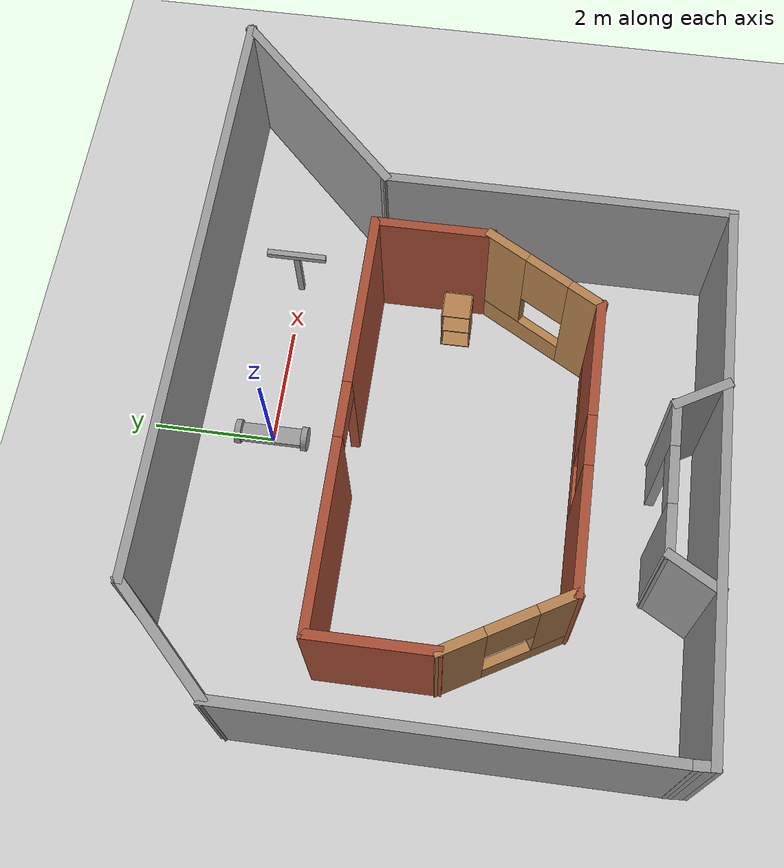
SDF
<sdf version="1.6">
 <world name="default">
  <plugin name="hello" filename="libhello.so"/>
  <plugin name="hello" filename="libhello.so"/>
  <plugin name="collision_map_creator" filename="libcollision_map_creator.so"/>
  <light name="sun" type="directional">
   <pose>0 0 10 0 -0 0</pose>
   <diffuse>0.8 0.8 0.8 1</diffuse>
   <specular>0.2 0.2 0.2 1</specular>
   <attenuation>
    <range>1000</range>
    <constant>0.9</constant>
    <linear>0.01</linear>
    <quadratic>0.001</quadratic>
   </attenuation>
   <direction>-0.5 0.1 -0.9</direction>
  </light>
  <model name="ground_plane">
   <static>1</static>
   <link name="link">
    <collision name="collision">
     <geometry><plane><normal>0 0 1</normal><size>100 100</size></plane></geometry>
     <surface>
      <contact><collide_bitmask>65535</collide_bitmask></contact>
      <friction><ode><mu>100</mu><mu2>50</mu2></ode></friction>
     </surface>
    </collision>
    <visual name="visual">
     <cast_shadows>0</cast_shadows>
     <geometry><plane><normal>0 0 1</normal><size>100 100</size></plane></geometry>
     <material>
      <script><uri>file://media/materials/scripts/gazebo.material</uri><name>Gazebo/Grey</name></script>
     </material>
    </visual>
   </link>
  </model>
  <gravity>0 0 -9.8</gravity>
  <magnetic_field>6e-06 2.3e-05 -4.2e-05</magnetic_field>
  <atmosphere type="adiabatic"/>
  <physics name="default_physics" default="0" type="ode">
   <max_step_size>0.001</max_step_size>
   <real_time_factor>1</real_time_factor>
   <real_time_update_rate>1000</real_time_update_rate>
  </physics>
  <scene><ambient>0.4 0.4 0.4 1</ambient><background>0.7 0.7 0.7 1</background><shadows>1</shadows></scene>
  <spherical_coordinates>
   <surface_model>EARTH_WGS84</surface_model>
   <latitude_deg>0</latitude_deg>
   <longitude_deg>0</longitude_deg>
   <elevation>0</elevation>
   <heading_deg>0</heading_deg>
  </spherical_coordinates>
  <model name="house">
   <pose>-0.44 -3.22805 0 0 -0 0</pose>
   <link name="Wall_0">
    <collision name="Wall_0_Collision">
     <geometry><box><size>2 0.15 2.5</size></box></geometry>
     <pose>0 0 1.25 0 -0 0</pose>
    </collision>
    <visual name="Wall_0_Visual">
     <pose>0 0 1.25 0 -0 0</pose>
     <geometry><box><size>2 0.15 2.5</size></box></geometry>
     <material>
      <script><uri>file://media/materials/scripts/gazebo.material</uri><name>Gazebo/Bricks</name></script>
      <ambient>0.435294 0.796078 0.67451 1</ambient>
     </material>
     <meta><layer>0</layer></meta>
    </visual>
    <pose>-3.35 0.923052 0 0 -0 1.5708</pose>
   </link>
   <link name="Wall_10">
    <pose>0 -1.8206 0 0 -0 0</pose>
    <visual name="Wall_10_Visual_0">
     <pose>-1.37779 0 1.25 0 -0 0</pose>
     <geometry><box><size>1.99442 0.15 2.5</size></box></geometry>
     <material>
      <script><uri>file://media/materials/scripts/gazebo.material</uri><name>Gazebo/Bricks</name></script>
      <ambient>0.435294 0.796078 0.67451 1</ambient>
     </material>
     <meta><layer>0</layer></meta>
    </visual>
    <collision name="Wall_10_Collision_0">
     <geometry><box><size>1.99442 0.15 2.5</size></box></geometry>
     <pose>-1.37779 0 1.25 0 -0 0</pose>
    </collision>
    <visual name="Wall_10_Visual_1">
     <pose>0.99721 0 0.25 0 -0 0</pose>
     <geometry><box><size>2.75558 0.15 0.5</size></box></geometry>
     <material>
      <script><uri>file://media/materials/scripts/gazebo.material</uri><name>Gazebo/Bricks</name></script>
      <ambient>0.435294 0.796078 0.67451 1</ambient>
     </material>
     <meta><layer>0</layer></meta>
    </visual>
    <collision name="Wall_10_Collision_1">
     <geometry><box><size>2.75558 0.15 0.5</size></box></geometry>
     <pose>0.99721 0 0.25 0 -0 0</pose>
    </collision>
    <visual name="Wall_10_Visual_2">
     <pose>1.39721 0 1.5 0 -0 0</pose>
     <geometry><box><size>1.95558 0.15 2</size></box></geometry>
     <material>
      <script><uri>file://media/materials/scripts/gazebo.material</uri><name>Gazebo/Bricks</name></script>
      <ambient>0.435294 0.796078 0.67451 1</ambient>
     </material>
     <meta><layer>0</layer></meta>
    </visual>
    <collision name="Wall_10_Collision_2">
     <geometry><box><size>1.95558 0.15 2</size></box></geometry>
     <pose>1.39721 0 1.5 0 -0 0</pose>
    </collision>
    <visual name="Wall_10_Visual_3">
     <pose>0.019419 0 1.9 0 -0 0</pose>
     <geometry><box><size>0.8 0.15 1.2</size></box></geometry>
     <material>
      <script><uri>file://media/materials/scripts/gazebo.material</uri><name>Gazebo/Bricks</name></script>
      <ambient>0.435294 0.796078 0.67451 1</ambient>
     </material>
     <meta><layer>0</layer></meta>
    </visual>
    <collision name="Wall_10_Collision_3">
     <geometry><box><size>0.8 0.15 1.2</size></box></geometry>
     <pose>0.019419 0 1.9 0 -0 0</pose>
    </collision>
   </link>
   <link name="Wall_11">
    <pose>2.825 -0.911274 0 0 -0 1.0472</pose>
    <visual name="Wall_11_Visual_0">
     <pose>-0.798385 0 1.25 0 -0 0</pose>
     <geometry><box><size>0.65323 0.15 2.5</size></box></geometry>
     <material>
      <script><uri>file://media/materials/scripts/gazebo.material</uri><name>Gazebo/Wood</name></script>
      <ambient>1 1 1 1</ambient>
     </material>
     <meta><layer>0</layer></meta>
    </visual>
    <collision name="Wall_11_Collision_0">
     <geometry><box><size>0.65323 0.15 2.5</size></box></geometry>
     <pose>-0.798385 0 1.25 0 -0 0</pose>
    </collision>
    <visual name="Wall_11_Visual_1">
     <pose>0.326615 0 0.25 0 -0 0</pose>
     <geometry><box><size>1.59677 0.15 0.5</size></box></geometry>
     <material>
      <script><uri>file://media/materials/scripts/gazebo.material</uri><name>Gazebo/Wood</name></script>
      <ambient>1 1 1 1</ambient>
     </material>
     <meta><layer>0</layer></meta>
    </visual>
    <collision name="Wall_11_Collision_1">
     <geometry><box><size>1.59677 0.15 0.5</size></box></geometry>
     <pose>0.326615 0 0.25 0 -0 0</pose>
    </collision>
    <visual name="Wall_11_Visual_2">
     <pose>0.726615 0 1.5 0 -0 0</pose>
     <geometry><box><size>0.79677 0.15 2</size></box></geometry>
     <material>
      <script><uri>file://media/materials/scripts/gazebo.material</uri><name>Gazebo/Wood</name></script>
      <ambient>1 1 1 1</ambient>
     </material>
     <meta><layer>0</layer></meta>
    </visual>
    <collision name="Wall_11_Collision_2">
     <geometry><box><size>0.79677 0.15 2</size></box></geometry>
     <pose>0.726615 0 1.5 0 -0 0</pose>
    </collision>
    <visual name="Wall_11_Visual_3">
     <pose>-0.07177 0 1.9 0 -0 0</pose>
     <geometry><box><size>0.8 0.15 1.2</size></box></geometry>
     <material>
      <script><uri>file://media/materials/scripts/gazebo.material</uri><name>Gazebo/Wood</name></script>
      <ambient>1 1 1 1</ambient>
     </material>
     <meta><layer>0</layer></meta>
    </visual>
    <collision name="Wall_11_Collision_3">
     <geometry><box><size>0.8 0.15 1.2</size></box></geometry>
     <pose>-0.07177 0 1.9 0 -0 0</pose>
    </collision>
   </link>
   <link name="Wall_12">
    <collision name="Wall_12_Collision">
     <geometry><box><size>2 0.15 2.5</size></box></geometry>
     <pose>0 0 1.25 0 -0 0</pose>
    </collision>
    <visual name="Wall_12_Visual">
     <pose>0 0 1.25 0 -0 0</pose>
     <geometry><box><size>2 0.15 2.5</size></box></geometry>
     <material>
      <script><uri>file://media/materials/scripts/gazebo.material</uri><name>Gazebo/Bricks</name></script>
      <ambient>0.435294 0.796078 0.67451 1</ambient>
     </material>
     <meta><layer>0</layer></meta>
    </visual>
    <pose>3.35 0.923052 0 0 -0 1.5708</pose>
   </link>
   <link name="Wall_13">
    <pose>0 1.84805 0 0 -0 3.14159</pose>
    <visual name="Wall_13_Visual_0">
     <pose>-1.95871 0 1.25 0 -0 0</pose>
     <geometry><box><size>2.93258 0.15 2.5</size></box></geometry>
     <material>
      <script><uri>file://media/materials/scripts/gazebo.material</uri><name>Gazebo/Bricks</name></script>
      <ambient>1 1 1 1</ambient>
     </material>
     <meta><layer>0</layer></meta>
    </visual>
    <collision name="Wall_13_Collision_0">
     <geometry><box><size>2.93258 0.15 2.5</size></box></geometry>
     <pose>-1.95871 0 1.25 0 -0 0</pose>
    </collision>
    <visual name="Wall_13_Visual_1">
     <pose>1.91629 0 1.25 0 -0 0</pose>
     <geometry><box><size>3.01742 0.15 2.5</size></box></geometry>
     <material>
      <script><uri>file://media/materials/scripts/gazebo.material</uri><name>Gazebo/Bricks</name></script>
      <ambient>1 1 1 1</ambient>
     </material>
     <meta><layer>0</layer></meta>
    </visual>
    <collision name="Wall_13_Collision_1">
     <geometry><box><size>3.01742 0.15 2.5</size></box></geometry>
     <pose>1.91629 0 1.25 0 -0 0</pose>
    </collision>
    <visual name="Wall_13_Visual_2">
     <pose>-0.042419 0 2.25 0 -0 0</pose>
     <geometry><box><size>0.9 0.15 0.5</size></box></geometry>
     <material>
      <script><uri>file://media/materials/scripts/gazebo.material</uri><name>Gazebo/Bricks</name></script>
      <ambient>1 1 1 1</ambient>
     </material>
     <meta><layer>0</layer></meta>
    </visual>
    <collision name="Wall_13_Collision_2">
     <geometry><box><size>0.9 0.15 0.5</size></box></geometry>
     <pose>-0.042419 0 2.25 0 -0 0</pose>
    </collision>
   </link>
   <link name="Wall_9">
    <pose>-2.825 -0.911274 0 0 0 -1.0472</pose>
    <visual name="Wall_9_Visual_0">
     <pose>-0.736824 0 1.25 0 -0 0</pose>
     <geometry><box><size>0.776352 0.15 2.5</size></box></geometry>
     <material>
      <script><uri>file://media/materials/scripts/gazebo.material</uri><name>Gazebo/Wood</name></script>
      <ambient>1 1 1 1</ambient>
     </material>
     <meta><layer>0</layer></meta>
    </visual>
    <collision name="Wall_9_Collision_0">
     <geometry><box><size>0.776352 0.15 2.5</size></box></geometry>
     <pose>-0.736824 0 1.25 0 -0 0</pose>
    </collision>
    <visual name="Wall_9_Visual_1">
     <pose>0.388176 0 0.25 0 -0 0</pose>
     <geometry><box><size>1.47365 0.15 0.5</size></box></geometry>
     <material>
      <script><uri>file://media/materials/scripts/gazebo.material</uri><name>Gazebo/Wood</name></script>
      <ambient>1 1 1 1</ambient>
     </material>
     <meta><layer>0</layer></meta>
    </visual>
    <collision name="Wall_9_Collision_1">
     <geometry><box><size>1.47365 0.15 0.5</size></box></geometry>
     <pose>0.388176 0 0.25 0 -0 0</pose>
    </collision>
    <visual name="Wall_9_Visual_2">
     <pose>0.788176 0 1.5 0 -0 0</pose>
     <geometry><box><size>0.673648 0.15 2</size></box></geometry>
     <material>
      <script><uri>file://media/materials/scripts/gazebo.material</uri><name>Gazebo/Wood</name></script>
      <ambient>1 1 1 1</ambient>
     </material>
     <meta><layer>0</layer></meta>
    </visual>
    <collision name="Wall_9_Collision_2">
     <geometry><box><size>0.673648 0.15 2</size></box></geometry>
     <pose>0.788176 0 1.5 0 -0 0</pose>
    </collision>
    <visual name="Wall_9_Visual_3">
     <pose>0.051352 0 1.9 0 -0 0</pose>
     <geometry><box><size>0.8 0.15 1.2</size></box></geometry>
     <material>
      <script><uri>file://media/materials/scripts/gazebo.material</uri><name>Gazebo/Wood</name></script>
      <ambient>1 1 1 1</ambient>
     </material>
     <meta><layer>0</layer></meta>
    </visual>
    <collision name="Wall_9_Collision_3">
     <geometry><box><size>0.8 0.15 1.2</size></box></geometry>
     <pose>0.051352 0 1.9 0 -0 0</pose>
    </collision>
   </link>
   <static>1</static>
  </model>
  <model name="robot">
   <link name="link_0">
    <inertial>
     <mass>1.10599</mass>
     <inertia>
      <ixx>0.204905</ixx>
      <ixy>0</ixy>
      <ixz>0</ixz>
      <iyy>0.204905</iyy>
      <iyz>0</iyz>
      <izz>0.184332</izz>
     </inertia>
    </inertial>
    <visual name="visual">
     <geometry><box><size>0.3 1 0.1</size></box></geometry>
     <material>
      <lighting>1</lighting>
      <script><uri>file://media/materials/scripts/gazebo.material</uri><name>Gazebo/Grey</name></script>
      <shader type="pixel"><normal_map>__default__</normal_map></shader>
      <ambient>0.3 0.3 0.3 1</ambient>
      <diffuse>0.7 0.7 0.7 1</diffuse>
      <specular>0.01 0.01 0.01 1</specular>
      <emissive>0 0 0 1</emissive>
     </material>
    </visual>
    <collision name="collision">
     <geometry><box><size>0.3 1 0.1</size></box></geometry>
     <surface>
      <friction>
       <ode><mu>1</mu><mu2>1</mu2><fdir1>0 0 0</fdir1><slip1>0</slip1><slip2>0</slip2></ode>
       <torsional>
        <coefficient>1</coefficient>
        <patch_radius>0</patch_radius>
        <surface_radius>0</surface_radius>
        <use_patch_radius>1</use_patch_radius>
        <ode><slip>0</slip></ode>
       </torsional>
      </friction>
      <bounce><restitution_coefficient>0</restitution_coefficient><threshold>1e+06</threshold></bounce>
      <contact>
       <collide_without_contact>0</collide_without_contact>
       <collide_without_contact_bitmask>1</collide_without_contact_bitmask>
       <collide_bitmask>1</collide_bitmask>
       <ode>
        <soft_cfm>0</soft_cfm>
        <soft_erp>0.2</soft_erp>
        <kp>1e+13</kp>
        <kd>1</kd>
        <max_vel>0.01</max_vel>
        <min_depth>0</min_depth>
       </ode>
       <bullet>
        <split_impulse>1</split_impulse>
        <split_impulse_penetration_threshold>-0.01</split_impulse_penetration_threshold>
        <soft_cfm>0</soft_cfm>
        <soft_erp>0.2</soft_erp>
        <kp>1e+13</kp>
        <kd>1</kd>
       </bullet>
      </contact>
     </surface>
    </collision>
   </link>
   <link name="link_1">
    <pose>0 -0.550001 0 1.57079 -0 0</pose>
    <inertial>
     <mass>1</mass>
     <inertia><ixx>0.145833</ixx><ixy>0</ixy><ixz>0</ixz><iyy>0.145833</iyy><iyz>0</iyz><izz>0.125</izz></inertia>
    </inertial>
    <visual name="visual">
     <geometry><cylinder><radius>0.2</radius><length>0.1</length></cylinder></geometry>
     <material>
      <lighting>1</lighting>
      <script><uri>file://media/materials/scripts/gazebo.material</uri><name>Gazebo/Grey</name></script>
      <shader type="pixel"><normal_map>__default__</normal_map></shader>
      <ambient>0.3 0.3 0.3 1</ambient>
      <diffuse>0.7 0.7 0.7 1</diffuse>
      <specular>0.01 0.01 0.01 1</specular>
      <emissive>0 0 0 1</emissive>
     </material>
    </visual>
    <collision name="collision">
     <geometry><cylinder><radius>0.2</radius><length>0.1</length></cylinder></geometry>
     <surface>
      <friction>
       <ode><mu>1</mu><mu2>1</mu2><fdir1>0 0 0</fdir1><slip1>0</slip1><slip2>0</slip2></ode>
       <torsional>
        <coefficient>1</coefficient>
        <patch_radius>0</patch_radius>
        <surface_radius>0</surface_radius>
        <use_patch_radius>1</use_patch_radius>
        <ode><slip>0</slip></ode>
       </torsional>
      </friction>
      <bounce><restitution_coefficient>0</restitution_coefficient><threshold>1e+06</threshold></bounce>
      <contact>
       <collide_without_contact>0</collide_without_contact>
       <collide_without_contact_bitmask>1</collide_without_contact_bitmask>
       <collide_bitmask>1</collide_bitmask>
       <ode>
        <soft_cfm>0</soft_cfm>
        <soft_erp>0.2</soft_erp>
        <kp>1e+13</kp>
        <kd>1</kd>
        <max_vel>0.01</max_vel>
        <min_depth>0</min_depth>
       </ode>
       <bullet>
        <split_impulse>1</split_impulse>
        <split_impulse_penetration_threshold>-0.01</split_impulse_penetration_threshold>
        <soft_cfm>0</soft_cfm>
        <soft_erp>0.2</soft_erp>
        <kp>1e+13</kp>
        <kd>1</kd>
       </bullet>
      </contact>
     </surface>
    </collision>
   </link>
   <link name="link_1_clone">
    <pose>0 0.550001 0 1.57079 -0 0</pose>
    <inertial>
     <mass>1</mass>
     <inertia><ixx>0.145833</ixx><ixy>0</ixy><ixz>0</ixz><iyy>0.145833</iyy><iyz>0</iyz><izz>0.125</izz></inertia>
    </inertial>
    <visual name="visual">
     <geometry><cylinder><radius>0.2</radius><length>0.1</length></cylinder></geometry>
     <material>
      <lighting>1</lighting>
      <script><uri>file://media/materials/scripts/gazebo.material</uri><name>Gazebo/Grey</name></script>
      <shader type="pixel"><normal_map>__default__</normal_map></shader>
      <ambient>0.3 0.3 0.3 1</ambient>
      <diffuse>0.7 0.7 0.7 1</diffuse>
      <specular>0.01 0.01 0.01 1</specular>
      <emissive>0 0 0 1</emissive>
     </material>
    </visual>
    <collision name="collision">
     <geometry><cylinder><radius>0.2</radius><length>0.1</length></cylinder></geometry>
     <surface>
      <friction>
       <ode><mu>1</mu><mu2>1</mu2><fdir1>0 0 0</fdir1><slip1>0</slip1><slip2>0</slip2></ode>
       <torsional>
        <coefficient>1</coefficient>
        <patch_radius>0</patch_radius>
        <surface_radius>0</surface_radius>
        <use_patch_radius>1</use_patch_radius>
        <ode><slip>0</slip></ode>
       </torsional>
      </friction>
      <bounce><restitution_coefficient>0</restitution_coefficient><threshold>1e+06</threshold></bounce>
      <contact>
       <collide_without_contact>0</collide_without_contact>
       <collide_without_contact_bitmask>1</collide_without_contact_bitmask>
       <collide_bitmask>1</collide_bitmask>
       <ode>
        <soft_cfm>0</soft_cfm>
        <soft_erp>0.2</soft_erp>
        <kp>1e+13</kp>
        <kd>1</kd>
        <max_vel>0.01</max_vel>
        <min_depth>0</min_depth>
       </ode>
       <bullet>
        <split_impulse>1</split_impulse>
        <split_impulse_penetration_threshold>-0.01</split_impulse_penetration_threshold>
        <soft_cfm>0</soft_cfm>
        <soft_erp>0.2</soft_erp>
        <kp>1e+13</kp>
        <kd>1</kd>
       </bullet>
      </contact>
     </surface>
    </collision>
   </link>
   <joint name="link_0_JOINT_0" type="revolute">
    <parent>link_0</parent>
    <child>link_1</child>
    <axis>
     <xyz>0 0 1</xyz>
     <use_parent_model_frame>0</use_parent_model_frame>
     <limit>
      <lower>-1.79769e+308</lower>
      <upper>1.79769e+308</upper>
      <effort>-1</effort>
      <velocity>-1</velocity>
     </limit>
     <dynamics>
      <spring_reference>0</spring_reference>
      <spring_stiffness>0</spring_stiffness>
      <damping>0</damping>
     </dynamics>
    </axis>
    <physics>
     <ode><limit><cfm>0</cfm><erp>0.2</erp></limit><suspension><cfm>0</cfm><erp>0.2</erp></suspension></ode>
    </physics>
   </joint>
   <joint name="link_0_JOINT_1" type="revolute">
    <parent>link_0</parent>
    <child>link_1_clone</child>
    <axis>
     <xyz>0 0 1</xyz>
     <use_parent_model_frame>0</use_parent_model_frame>
     <limit>
      <lower>-1.79769e+308</lower>
      <upper>1.79769e+308</upper>
      <effort>-1</effort>
      <velocity>-1</velocity>
     </limit>
     <dynamics>
      <spring_reference>0</spring_reference>
      <spring_stiffness>0</spring_stiffness>
      <damping>0</damping>
     </dynamics>
    </axis>
    <physics>
     <ode><limit><cfm>0</cfm><erp>0.2</erp></limit><suspension><cfm>0</cfm><erp>0.2</erp></suspension></ode>
    </physics>
   </joint>
   <static>0</static>
   <pose>0 -1e-06 0.2 0 -0 0</pose>
  </model>
  <model name="anotherrone_clone_0">
   <link name="link_0_clone">
    <pose>1.00397 -1.20326 1.05 1.57079 -0 0</pose>
    <inertial>
     <mass>1</mass>
     <inertia>
      <ixx>0.166667</ixx>
      <ixy>0</ixy>
      <ixz>0</ixz>
      <iyy>0.166667</iyy>
      <iyz>0</iyz>
      <izz>0.166667</izz>
     </inertia>
    </inertial>
    <visual name="visual">
     <geometry><box><size>0.1 0.1 1</size></box></geometry>
     <material>
      <lighting>1</lighting>
      <script><uri>file://media/materials/scripts/gazebo.material</uri><name>Gazebo/Grey</name></script>
      <shader type="pixel"><normal_map>__default__</normal_map></shader>
      <ambient>0.3 0.3 0.3 1</ambient>
      <diffuse>0.7 0.7 0.7 1</diffuse>
      <specular>0.01 0.01 0.01 1</specular>
      <emissive>0 0 0 1</emissive>
     </material>
    </visual>
    <collision name="collision">
     <geometry><box><size>0.1 0.1 1</size></box></geometry>
     <surface>
      <friction>
       <ode><mu>1</mu><mu2>1</mu2><fdir1>0 0 0</fdir1><slip1>0</slip1><slip2>0</slip2></ode>
       <torsional>
        <coefficient>1</coefficient>
        <patch_radius>0</patch_radius>
        <surface_radius>0</surface_radius>
        <use_patch_radius>1</use_patch_radius>
        <ode><slip>0</slip></ode>
       </torsional>
      </friction>
      <bounce><restitution_coefficient>0</restitution_coefficient><threshold>1e+06</threshold></bounce>
      <contact>
       <collide_without_contact>0</collide_without_contact>
       <collide_without_contact_bitmask>1</collide_without_contact_bitmask>
       <collide_bitmask>1</collide_bitmask>
       <ode>
        <soft_cfm>0</soft_cfm>
        <soft_erp>0.2</soft_erp>
        <kp>1e+13</kp>
        <kd>1</kd>
        <max_vel>0.01</max_vel>
        <min_depth>0</min_depth>
       </ode>
       <bullet>
        <split_impulse>1</split_impulse>
        <split_impulse_penetration_threshold>-0.01</split_impulse_penetration_threshold>
        <soft_cfm>0</soft_cfm>
        <soft_erp>0.2</soft_erp>
        <kp>1e+13</kp>
        <kd>1</kd>
       </bullet>
      </contact>
     </surface>
    </collision>
   </link>
   <link name="link_0_clone_clone">
    <pose>1.00397 -1.20326 0.499999 0 -0 0</pose>
    <inertial>
     <mass>1</mass>
     <inertia>
      <ixx>0.166667</ixx>
      <ixy>0</ixy>
      <ixz>0</ixz>
      <iyy>0.166667</iyy>
      <iyz>0</iyz>
      <izz>0.166667</izz>
     </inertia>
    </inertial>
    <visual name="visual">
     <geometry><box><size>0.1 0.1 1</size></box></geometry>
     <material>
      <lighting>1</lighting>
      <script><uri>file://media/materials/scripts/gazebo.material</uri><name>Gazebo/Grey</name></script>
      <shader type="pixel"><normal_map>__default__</normal_map></shader>
      <ambient>0.3 0.3 0.3 1</ambient>
      <diffuse>0.7 0.7 0.7 1</diffuse>
      <specular>0.01 0.01 0.01 1</specular>
      <emissive>0 0 0 1</emissive>
     </material>
    </visual>
    <collision name="collision">
     <geometry><box><size>0.1 0.1 1</size></box></geometry>
     <surface>
      <friction>
       <ode><mu>1</mu><mu2>1</mu2><fdir1>0 0 0</fdir1><slip1>0</slip1><slip2>0</slip2></ode>
       <torsional>
        <coefficient>1</coefficient>
        <patch_radius>0</patch_radius>
        <surface_radius>0</surface_radius>
        <use_patch_radius>1</use_patch_radius>
        <ode><slip>0</slip></ode>
       </torsional>
      </friction>
      <bounce><restitution_coefficient>0</restitution_coefficient><threshold>1e+06</threshold></bounce>
      <contact>
       <collide_without_contact>0</collide_without_contact>
       <collide_without_contact_bitmask>1</collide_without_contact_bitmask>
       <collide_bitmask>1</collide_bitmask>
       <ode>
        <soft_cfm>0</soft_cfm>
        <soft_erp>0.2</soft_erp>
        <kp>1e+13</kp>
        <kd>1</kd>
        <max_vel>0.01</max_vel>
        <min_depth>0</min_depth>
       </ode>
       <bullet>
        <split_impulse>1</split_impulse>
        <split_impulse_penetration_threshold>-0.01</split_impulse_penetration_threshold>
        <soft_cfm>0</soft_cfm>
        <soft_erp>0.2</soft_erp>
        <kp>1e+13</kp>
        <kd>1</kd>
       </bullet>
      </contact>
     </surface>
    </collision>
   </link>
   <joint name="link_0_clone_clone_JOINT_0" type="revolute">
    <parent>link_0_clone_clone</parent>
    <child>link_0_clone</child>
    <axis>
     <xyz>0 -1 0</xyz>
     <use_parent_model_frame>0</use_parent_model_frame>
     <limit>
      <lower>-1.79769e+308</lower>
      <upper>1.79769e+308</upper>
      <effort>-1</effort>
      <velocity>-1</velocity>
     </limit>
     <dynamics>
      <spring_reference>0</spring_reference>
      <spring_stiffness>0</spring_stiffness>
      <damping>0</damping>
     </dynamics>
    </axis>
    <physics>
     <ode><limit><cfm>0</cfm><erp>0.2</erp></limit><suspension><cfm>0</cfm><erp>0.2</erp></suspension></ode>
    </physics>
   </joint>
   <static>0</static>
   <pose>1.95548 1.23397 -1.9e-05 0 -2.1e-05 1.8e-05</pose>
  </model>
  <model name="my_ball">
   <link name="link">
    <inertial>
     <mass>1</mass>
     <inertia><ixx>0.1</ixx><ixy>0</ixy><ixz>0</ixz><iyy>0.1</iyy><iyz>0</iyz><izz>0.1</izz></inertia>
    </inertial>
    <visual name="visual">
     <geometry><sphere><radius>0.1</radius></sphere></geometry>
     <material>
      <script><name>Gazebo/Grey</name><uri>file://media/materials/scripts/gazebo.material</uri></script>
      <shader type="pixel"><normal_map>__default__</normal_map></shader>
      <ambient>1 1 1 1</ambient>
      <diffuse>1 1 1 1</diffuse>
      <specular>1 1 1 1</specular>
      <emissive>1 1 1 1</emissive>
     </material>
    </visual>
    <collision name="collision">
     <geometry><sphere><radius>0.1</radius></sphere></geometry>
     <surface>
      <friction>
       <ode><mu>1</mu><mu2>1</mu2><fdir1>0 0 0</fdir1><slip1>0</slip1><slip2>0</slip2></ode>
       <torsional>
        <coefficient>1</coefficient>
        <patch_radius>0</patch_radius>
        <surface_radius>0</surface_radius>
        <use_patch_radius>1</use_patch_radius>
        <ode><slip>0</slip></ode>
       </torsional>
      </friction>
      <bounce><restitution_coefficient>0</restitution_coefficient><threshold>1e+06</threshold></bounce>
      <contact>
       <collide_without_contact>0</collide_without_contact>
       <collide_without_contact_bitmask>1</collide_without_contact_bitmask>
       <collide_bitmask>1</collide_bitmask>
       <ode>
        <soft_cfm>0</soft_cfm>
        <soft_erp>0.2</soft_erp>
        <kp>1e+13</kp>
        <kd>1</kd>
        <max_vel>0.01</max_vel>
        <min_depth>0</min_depth>
       </ode>
       <bullet>
        <split_impulse>1</split_impulse>
        <split_impulse_penetration_threshold>-0.01</split_impulse_penetration_threshold>
        <soft_cfm>0</soft_cfm>
        <soft_erp>0.2</soft_erp>
        <kp>1e+13</kp>
        <kd>1</kd>
       </bullet>
      </contact>
     </surface>
    </collision>
   </link>
   <static>0</static>
   <pose>3.46039 -2.1509 0.1 0 -0 0</pose>
  </model>
  <model name="lilhouse_0">
   <pose>0.827462 -2.85247 0 0 -0 0</pose>
   <link name="Wall_10">
    <collision name="Wall_10_Collision">
     <geometry><box><size>8.75 0.15 2.5</size></box></geometry>
     <pose>0 0 1.25 0 -0 0</pose>
    </collision>
    <visual name="Wall_10_Visual">
     <pose>0 0 1.25 0 -0 0</pose>
     <geometry><box><size>8.75 0.15 2.5</size></box></geometry>
     <material>
      <script><uri>file://media/materials/scripts/gazebo.material</uri><name>Gazebo/Grey</name></script>
      <ambient>1 1 1 1</ambient>
     </material>
     <meta><layer>0</layer></meta>
    </visual>
    <pose>-1.3549 -4.16496 0 0 -0 3.14159</pose>
   </link>
   <link name="Wall_11">
    <collision name="Wall_11_Collision">
     <geometry><box><size>0.387769 0.15 2.5</size></box></geometry>
     <pose>0 0 1.25 0 -0 0</pose>
    </collision>
    <visual name="Wall_11_Visual">
     <pose>0 0 1.25 0 -0 0</pose>
     <geometry><box><size>0.387769 0.15 2.5</size></box></geometry>
     <material>
      <script><uri>file://media/materials/scripts/gazebo.material</uri><name>Gazebo/Grey</name></script>
      <ambient>1 1 1 1</ambient>
     </material>
     <meta><layer>0</layer></meta>
    </visual>
    <pose>-5.66118 -4.04625 0 0 -0 1.62366</pose>
   </link>
   <link name="Wall_13">
    <collision name="Wall_13_Collision">
     <geometry><box><size>1 0.15 2.5</size></box></geometry>
     <pose>0 0 1.25 0 -0 0</pose>
    </collision>
    <visual name="Wall_13_Visual">
     <pose>0 0 1.25 0 -0 0</pose>
     <geometry><box><size>1 0.15 2.5</size></box></geometry>
     <material>
      <script><uri>file://media/materials/scripts/gazebo.material</uri><name>Gazebo/Grey</name></script>
      <ambient>1 1 1 1</ambient>
     </material>
     <meta><layer>0</layer></meta>
    </visual>
    <pose>-3.05977 -3.79295 0 0 -0 1.0472</pose>
   </link>
   <link name="Wall_14">
    <pose>-1.67227 -3.42489 0 0 -0 0</pose>
    <visual name="Wall_14_Visual_0">
     <pose>-0.828863 0 1.25 0 -0 0</pose>
     <geometry><box><size>0.842273 0.15 2.5</size></box></geometry>
     <material>
      <script><uri>file://media/materials/scripts/gazebo.material</uri><name>Gazebo/Grey</name></script>
      <ambient>1 1 1 1</ambient>
     </material>
     <meta><layer>0</layer></meta>
    </visual>
    <collision name="Wall_14_Collision_0">
     <geometry><box><size>0.842273 0.15 2.5</size></box></geometry>
     <pose>-0.828863 0 1.25 0 -0 0</pose>
    </collision>
    <visual name="Wall_14_Visual_1">
     <pose>0.871137 0 1.25 0 -0 0</pose>
     <geometry><box><size>0.757727 0.15 2.5</size></box></geometry>
     <material>
      <script><uri>file://media/materials/scripts/gazebo.material</uri><name>Gazebo/Grey</name></script>
      <ambient>1 1 1 1</ambient>
     </material>
     <meta><layer>0</layer></meta>
    </visual>
    <collision name="Wall_14_Collision_1">
     <geometry><box><size>0.757727 0.15 2.5</size></box></geometry>
     <pose>0.871137 0 1.25 0 -0 0</pose>
    </collision>
    <visual name="Wall_14_Visual_2">
     <pose>0.042273 0 2.25 0 -0 0</pose>
     <geometry><box><size>0.9 0.15 0.5</size></box></geometry>
     <material>
      <script><uri>file://media/materials/scripts/gazebo.material</uri><name>Gazebo/Grey</name></script>
      <ambient>1 1 1 1</ambient>
     </material>
     <meta><layer>0</layer></meta>
    </visual>
    <collision name="Wall_14_Collision_2">
     <geometry><box><size>0.9 0.15 0.5</size></box></geometry>
     <pose>0.042273 0 2.25 0 -0 0</pose>
    </collision>
   </link>
   <link name="Wall_15">
    <collision name="Wall_15_Collision">
     <geometry><box><size>1 0.15 2.5</size></box></geometry>
     <pose>0 0 1.25 0 -0 0</pose>
    </collision>
    <visual name="Wall_15_Visual">
     <pose>0 0 1.25 0 -0 0</pose>
     <geometry><box><size>1 0.15 2.5</size></box></geometry>
     <material>
      <script><uri>file://media/materials/scripts/gazebo.material</uri><name>Gazebo/Grey</name></script>
      <ambient>1 1 1 1</ambient>
     </material>
     <meta><layer>0</layer></meta>
    </visual>
    <pose>-0.284772 -3.79295 0 0 0 -1.0472</pose>
   </link>
   <link name="Wall_4">
    <collision name="Wall_4_Collision">
     <geometry><box><size>6.75 0.15 2.5</size></box></geometry>
     <pose>0 0 1.25 0 -0 0</pose>
    </collision>
    <visual name="Wall_4_Visual">
     <pose>0 0 1.25 0 -0 0</pose>
     <geometry><box><size>6.75 0.15 2.5</size></box></geometry>
     <material>
      <script><uri>file://media/materials/scripts/gazebo.material</uri><name>Gazebo/Grey</name></script>
      <ambient>1 1 1 1</ambient>
     </material>
     <meta><layer>0</layer></meta>
    </visual>
    <pose>-5.66746 -0.627527 0 0 -0 1.5708</pose>
   </link>
   <link name="Wall_5">
    <collision name="Wall_5_Collision">
     <geometry><box><size>2.25 0.15 2.5</size></box></geometry>
     <pose>0 0 1.25 0 -0 0</pose>
    </collision>
    <visual name="Wall_5_Visual">
     <pose>0 0 1.25 0 -0 0</pose>
     <geometry><box><size>2.25 0.15 2.5</size></box></geometry>
     <material>
      <script><uri>file://media/materials/scripts/gazebo.material</uri><name>Gazebo/Grey</name></script>
      <ambient>1 1 1 1</ambient>
     </material>
     <meta><layer>0</layer></meta>
    </visual>
    <pose>-4.925 3.41493 0 0 -0 0.785398</pose>
   </link>
   <link name="Wall_6">
    <collision name="Wall_6_Collision">
     <geometry><box><size>10 0.15 2.5</size></box></geometry>
     <pose>0 0 1.25 0 -0 0</pose>
    </collision>
    <visual name="Wall_6_Visual">
     <pose>0 0 1.25 0 -0 0</pose>
     <geometry><box><size>10 0.15 2.5</size></box></geometry>
     <material>
      <script><uri>file://media/materials/scripts/gazebo.material</uri><name>Gazebo/Grey</name></script>
      <ambient>1 1 1 1</ambient>
     </material>
     <meta><layer>0</layer></meta>
    </visual>
    <pose>0.742462 4.1574 0 0 -0 0</pose>
   </link>
   <link name="Wall_7">
    <collision name="Wall_7_Collision">
     <geometry><box><size>4 0.15 2.5</size></box></geometry>
     <pose>0 0 1.25 0 -0 0</pose>
    </collision>
    <visual name="Wall_7_Visual">
     <pose>0 0 1.25 0 -0 0</pose>
     <geometry><box><size>4 0.15 2.5</size></box></geometry>
     <material>
      <script><uri>file://media/materials/scripts/gazebo.material</uri><name>Gazebo/Grey</name></script>
      <ambient>1 1 1 1</ambient>
     </material>
     <meta><layer>0</layer></meta>
    </visual>
    <pose>4.30628 2.79622 0 0 0 -2.35619</pose>
   </link>
   <link name="Wall_9">
    <collision name="Wall_9_Collision">
     <geometry><box><size>5.75 0.15 2.5</size></box></geometry>
     <pose>0 0 1.25 0 -0 0</pose>
    </collision>
    <visual name="Wall_9_Visual">
     <pose>0 0 1.25 0 -0 0</pose>
     <geometry><box><size>5.75 0.15 2.5</size></box></geometry>
     <material>
      <script><uri>file://media/materials/scripts/gazebo.material</uri><name>Gazebo/Grey</name></script>
      <ambient>1 1 1 1</ambient>
     </material>
     <meta><layer>0</layer></meta>
    </visual>
    <pose>2.9451 -1.36496 0 0 0 -1.5708</pose>
   </link>
   <static>1</static>
  </model>
  <model name="cabinet">
   <static>1</static>
   <link name="cabinet_bottom_plate">
    <inertial>
     <pose>0 0 -1 0 -0 0</pose>
     <inertia><ixx>2.05</ixx><ixy>0</ixy><ixz>0</ixz><iyy>2.05</iyy><iyz>0</iyz><izz>2.05</izz></inertia>
     <mass>25</mass>
    </inertial>
    <collision name="cabinet_bottom_plate_geom">
     <pose>0 0 0.01 0 -0 0</pose>
     <geometry><box><size>0.45 0.45 0.02</size></box></geometry>
    </collision>
    <visual name="cabinet_bottom_plate_geom_visual">
     <pose>0 0 0.01 0 -0 0</pose>
     <geometry><box><size>0.45 0.45 0.02</size></box></geometry>
     <material>
      <script><uri>file://media/materials/scripts/gazebo.material</uri><name>Gazebo/Wood</name></script>
     </material>
    </visual>
    <collision name="cabinet_bottom_plate_geom_cabinet_back_plate">
     <pose>0.235 0 0.51 0 -0 0</pose>
     <geometry><box><size>0.02 0.45 1.02</size></box></geometry>
    </collision>
    <visual name="cabinet_bottom_plate_geom_cabinet_back_plate_visual">
     <pose>0.235 0 0.51 0 -0 0</pose>
     <geometry><box><size>0.02 0.45 1.02</size></box></geometry>
     <material>
      <script><uri>file://media/materials/scripts/gazebo.material</uri><name>Gazebo/Wood</name></script>
     </material>
    </visual>
    <collision name="cabinet_bottom_plate_geom_cabinet_left_plate">
     <pose>0 0.235 0.51 0 -0 0</pose>
     <geometry><box><size>0.45 0.02 1.02</size></box></geometry>
    </collision>
    <visual name="cabinet_bottom_plate_geom_cabinet_left_plate_visual">
     <pose>0 0.235 0.51 0 -0 0</pose>
     <geometry><box><size>0.45 0.02 1.02</size></box></geometry>
     <material>
      <script><uri>file://media/materials/scripts/gazebo.material</uri><name>Gazebo/Wood</name></script>
     </material>
    </visual>
    <collision name="cabinet_bottom_plate_geom_cabinet_middle_plate">
     <pose>0 0 0.51 0 -0 0</pose>
     <geometry><box><size>0.45 0.45 0.02</size></box></geometry>
    </collision>
    <visual name="cabinet_bottom_plate_geom_cabinet_middle_plate_visual">
     <pose>0 0 0.51 0 -0 0</pose>
     <geometry><box><size>0.45 0.45 0.02</size></box></geometry>
     <material>
      <script><uri>file://media/materials/scripts/gazebo.material</uri><name>Gazebo/Wood</name></script>
     </material>
    </visual>
    <collision name="cabinet_bottom_plate_geom_cabinet_right_plate">
     <pose>0 -0.235 0.51 0 -0 0</pose>
     <geometry><box><size>0.45 0.02 1.02</size></box></geometry>
    </collision>
    <visual name="cabinet_bottom_plate_geom_cabinet_right_plate_visual">
     <pose>0 -0.235 0.51 0 -0 0</pose>
     <geometry><box><size>0.45 0.02 1.02</size></box></geometry>
     <material>
      <script><uri>file://media/materials/scripts/gazebo.material</uri><name>Gazebo/Wood</name></script>
     </material>
    </visual>
    <collision name="cabinet_bottom_plate_geom_cabinet_top_plate">
     <pose>0 0 1.01 0 -0 0</pose>
     <geometry><box><size>0.45 0.45 0.02</size></box></geometry>
    </collision>
    <visual name="cabinet_bottom_plate_geom_cabinet_top_plate_visual">
     <pose>0 0 1.01 0 -0 0</pose>
     <geometry><box><size>0.45 0.45 0.02</size></box></geometry>
     <material>
      <script><uri>file://media/materials/scripts/gazebo.material</uri><name>Gazebo/Wood</name></script>
     </material>
    </visual>
   </link>
   <pose>2.37507 -2.78574 0 0 -0 0</pose>
  </model>
 </world>
</sdf>
